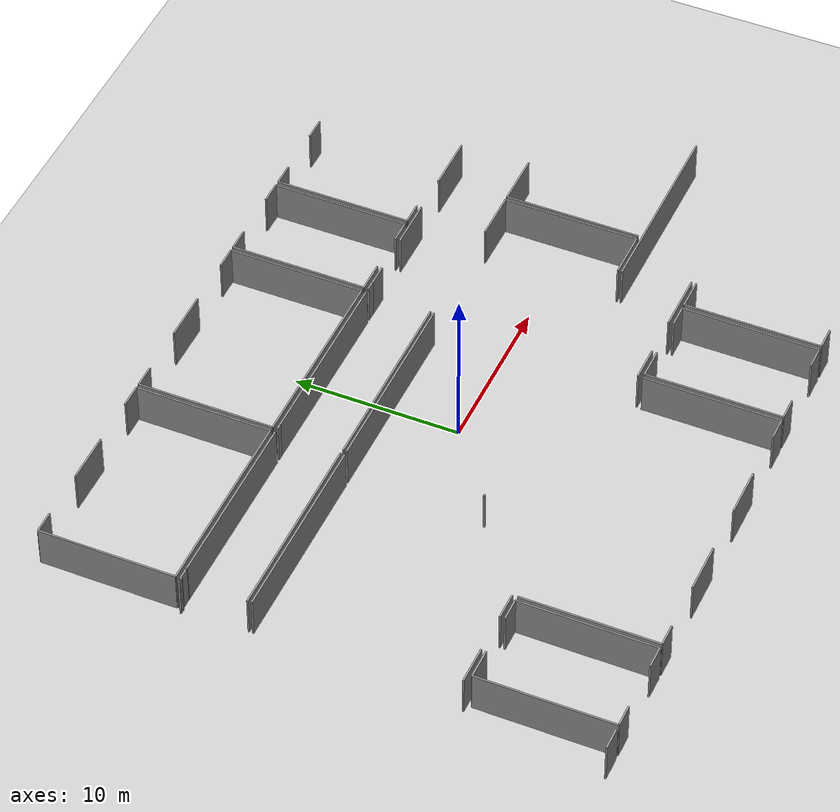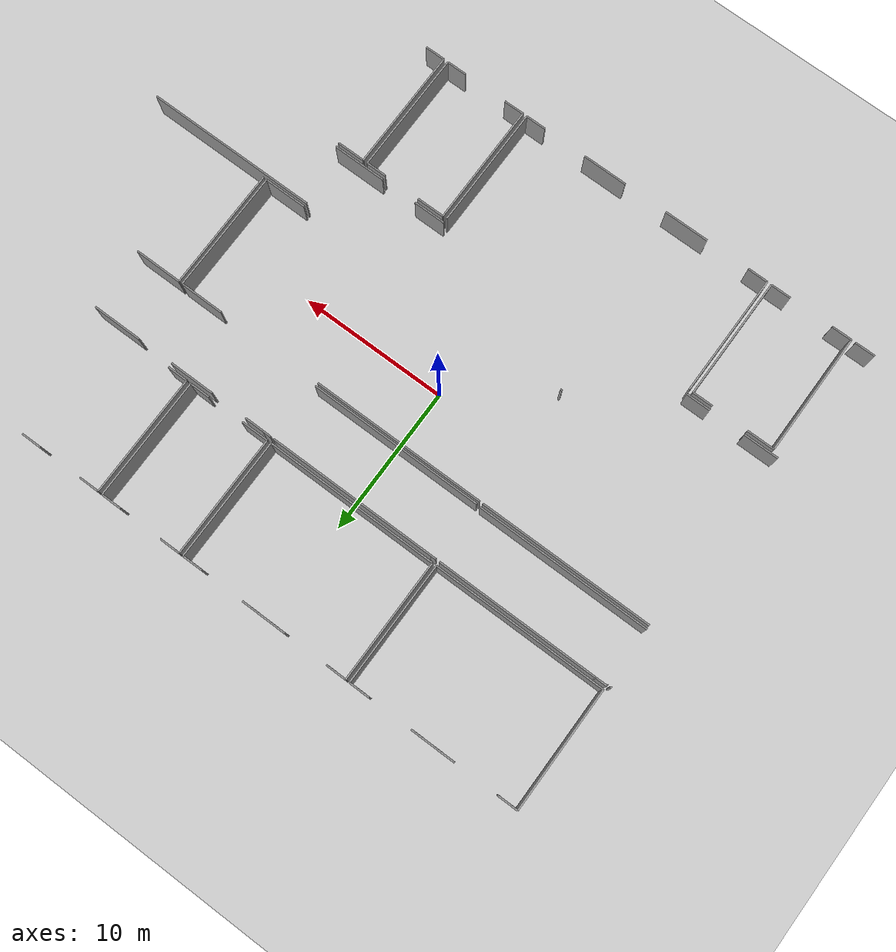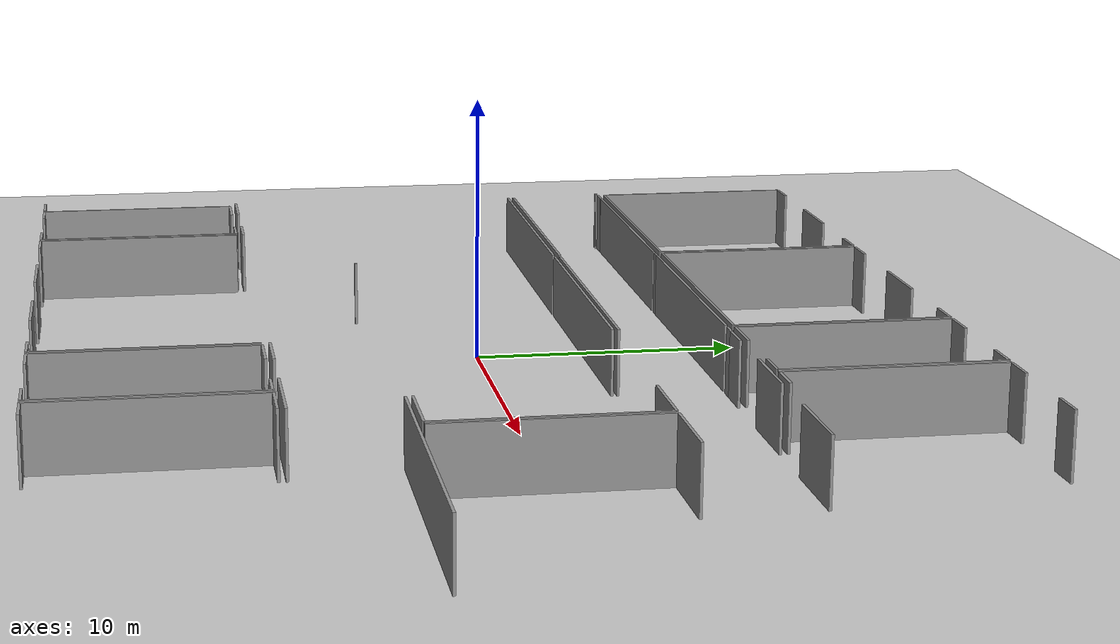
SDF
<sdf version="1.6">
 <world name="default">
  <model name="ground_plane">
   <static>1</static>
   <link name="link">
    <collision name="collision">
     <geometry><plane><normal>0 0 1</normal><size>100 100</size></plane></geometry>
     <surface><friction><ode><mu>100</mu><mu2>50</mu2></ode></friction></surface>
    </collision>
    <visual name="visual">
     <cast_shadows>0</cast_shadows>
     <geometry><plane><normal>0 0 1</normal><size>100 100</size></plane></geometry>
     <material>
      <script><uri>file://media/materials/scripts/gazebo.material</uri><name>Gazebo/Grey</name></script>
     </material>
    </visual>
   </link>
  </model>
  <model name="50041172">
   <static>1</static>
   <link name="Wall_37">
    <collision name="Wall_37_Collision">
     <geometry><box><size>1.36407227462 0.1 2.5</size></box></geometry>
     <pose>0.682036137309 0 1.25 0 0 0</pose>
    </collision>
    <visual name="Wall_37_Visual">
     <pose>0.682036137309 0 1.25 0 0 0</pose>
     <geometry><box><size>1.36407227462 0.1 2.5</size></box></geometry>
     <material>
      <script><uri>file://media/materials/scripts/gazebo.material</uri><name>Gazebo/Grey</name></script>
      <ambient>1 1 1 1</ambient>
     </material>
    </visual>
    <pose>47.5262138389 -33.5373281255 0 0 0 3.14159265359</pose>
   </link>
   <link name="Wall_39">
    <collision name="Wall_39_Collision">
     <geometry><box><size>8.20043822044 0.1 2.5</size></box></geometry>
     <pose>4.10021911022 0 1.25 0 0 0</pose>
    </collision>
    <visual name="Wall_39_Visual">
     <pose>4.10021911022 0 1.25 0 0 0</pose>
     <geometry><box><size>8.20043822044 0.1 2.5</size></box></geometry>
     <material>
      <script><uri>file://media/materials/scripts/gazebo.material</uri><name>Gazebo/Grey</name></script>
      <ambient>1 1 1 1</ambient>
     </material>
    </visual>
    <pose>47.8216633324 -33.542027881 0 0 0 1.57079632679</pose>
   </link>
   <link name="Wall_40">
    <collision name="Wall_40_Collision">
     <geometry><box><size>1.8539900289 0.1 2.5</size></box></geometry>
     <pose>0.926995014449 0 1.25 0 0 0</pose>
    </collision>
    <visual name="Wall_40_Visual">
     <pose>0.926995014449 0 1.25 0 0 0</pose>
     <geometry><box><size>1.8539900289 0.1 2.5</size></box></geometry>
     <material>
      <script><uri>file://media/materials/scripts/gazebo.material</uri><name>Gazebo/Grey</name></script>
      <ambient>1 1 1 1</ambient>
     </material>
    </visual>
    <pose>47.8216633324 -25.3415896605 0 0 0 0.0</pose>
   </link>
   <link name="Wall_41">
    <collision name="Wall_41_Collision">
     <geometry><box><size>1.37512305103 0.1 2.5</size></box></geometry>
     <pose>0.687561525515 0 1.25 0 0 0</pose>
    </collision>
    <visual name="Wall_41_Visual">
     <pose>0.687561525515 0 1.25 0 0 0</pose>
     <geometry><box><size>1.37512305103 0.1 2.5</size></box></geometry>
     <material>
      <script><uri>file://media/materials/scripts/gazebo.material</uri><name>Gazebo/Grey</name></script>
      <ambient>1 1 1 1</ambient>
     </material>
    </visual>
    <pose>52.1506462164 -25.3415896605 0 0 0 0.0</pose>
   </link>
   <link name="Wall_42">
    <collision name="Wall_42_Collision">
     <geometry><box><size>8.19573846496 0.1 2.5</size></box></geometry>
     <pose>4.09786923248 0 1.25 0 0 0</pose>
    </collision>
    <visual name="Wall_42_Visual">
     <pose>4.09786923248 0 1.25 0 0 0</pose>
     <geometry><box><size>8.19573846496 0.1 2.5</size></box></geometry>
     <material>
      <script><uri>file://media/materials/scripts/gazebo.material</uri><name>Gazebo/Grey</name></script>
      <ambient>1 1 1 1</ambient>
     </material>
    </visual>
    <pose>53.5257692674 -25.3415896605 0 0 0 -1.57079632679</pose>
   </link>
   <link name="Wall_43">
    <collision name="Wall_43_Collision">
     <geometry><box><size>1.36292909085 0.1 2.5</size></box></geometry>
     <pose>0.681464545426 0 1.25 0 0 0</pose>
    </collision>
    <visual name="Wall_43_Visual">
     <pose>0.681464545426 0 1.25 0 0 0</pose>
     <geometry><box><size>1.36292909085 0.1 2.5</size></box></geometry>
     <material>
      <script><uri>file://media/materials/scripts/gazebo.material</uri><name>Gazebo/Grey</name></script>
      <ambient>1 1 1 1</ambient>
     </material>
    </visual>
    <pose>53.5257692674 -33.5373281255 0 0 0 3.14159265359</pose>
   </link>
   <link name="Wall_44">
    <collision name="Wall_44_Collision">
     <geometry><box><size>1.3588725647 0.1 2.5</size></box></geometry>
     <pose>0.679436282349 0 1.25 0 0 0</pose>
    </collision>
    <visual name="Wall_44_Visual">
     <pose>0.679436282349 0 1.25 0 0 0</pose>
     <geometry><box><size>1.3588725647 0.1 2.5</size></box></geometry>
     <material>
      <script><uri>file://media/materials/scripts/gazebo.material</uri><name>Gazebo/Grey</name></script>
      <ambient>1 1 1 1</ambient>
     </material>
    </visual>
    <pose>49.1805277698 -33.5373281255 0 0 0 -3.13813407699</pose>
   </link>
   <link name="Wall_45">
    <collision name="Wall_45_Collision">
     <geometry><box><size>8.20551903719 0.1 2.5</size></box></geometry>
     <pose>4.10275951859 0 1.25 0 0 0</pose>
    </collision>
    <visual name="Wall_45_Visual">
     <pose>4.10275951859 0 1.25 0 0 0</pose>
     <geometry><box><size>8.20551903719 0.1 2.5</size></box></geometry>
     <material>
      <script><uri>file://media/materials/scripts/gazebo.material</uri><name>Gazebo/Grey</name></script>
      <ambient>1 1 1 1</ambient>
     </material>
    </visual>
    <pose>53.8153758217 -33.5453304119 0 0 0 1.57079632679</pose>
   </link>
   <link name="Wall_46">
    <collision name="Wall_46_Collision">
     <geometry><box><size>8.21021879267 0.1 2.5</size></box></geometry>
     <pose>4.10510939634 0 1.25 0 0 0</pose>
    </collision>
    <visual name="Wall_46_Visual">
     <pose>4.10510939634 0 1.25 0 0 0</pose>
     <geometry><box><size>8.21021879267 0.1 2.5</size></box></geometry>
     <material>
      <script><uri>file://media/materials/scripts/gazebo.material</uri><name>Gazebo/Grey</name></script>
      <ambient>1 1 1 1</ambient>
     </material>
    </visual>
    <pose>71.5291353085 -25.3398113747 0 0 0 -1.57079632679</pose>
   </link>
   <link name="Wall_47">
    <collision name="Wall_47_Collision">
     <geometry><box><size>1.37093137722 0.1 2.5</size></box></geometry>
     <pose>0.685465688609 0 1.25 0 0 0</pose>
    </collision>
    <visual name="Wall_47_Visual">
     <pose>0.685465688609 0 1.25 0 0 0</pose>
     <geometry><box><size>1.37093137722 0.1 2.5</size></box></geometry>
     <material>
      <script><uri>file://media/materials/scripts/gazebo.material</uri><name>Gazebo/Grey</name></script>
      <ambient>1 1 1 1</ambient>
     </material>
    </visual>
    <pose>71.5291353085 -33.5500301673 0 0 0 3.14159265359</pose>
   </link>
   <link name="Wall_48">
    <collision name="Wall_48_Collision">
     <geometry><box><size>3.02181575688 0.1 2.5</size></box></geometry>
     <pose>1.51090787844 0 1.25 0 0 0</pose>
    </collision>
    <visual name="Wall_48_Visual">
     <pose>1.51090787844 0 1.25 0 0 0</pose>
     <geometry><box><size>3.02181575688 0.1 2.5</size></box></geometry>
     <material>
      <script><uri>file://media/materials/scripts/gazebo.material</uri><name>Gazebo/Grey</name></script>
      <ambient>1 1 1 1</ambient>
     </material>
    </visual>
    <pose>67.186053158 -33.5500301673 0 0 0 3.14159265359</pose>
   </link>
   <link name="Wall_49">
    <collision name="Wall_49_Collision">
     <geometry><box><size>3.02156171605 0.1 2.5</size></box></geometry>
     <pose>1.51078085802 0 1.25 0 0 0</pose>
    </collision>
    <visual name="Wall_49_Visual">
     <pose>1.51078085802 0 1.25 0 0 0</pose>
     <geometry><box><size>3.02156171605 0.1 2.5</size></box></geometry>
     <material>
      <script><uri>file://media/materials/scripts/gazebo.material</uri><name>Gazebo/Grey</name></script>
      <ambient>1 1 1 1</ambient>
     </material>
    </visual>
    <pose>61.1828141374 -33.5500301673 0 0 0 3.14159265359</pose>
   </link>
   <link name="Wall_50">
    <collision name="Wall_50_Collision">
     <geometry><box><size>1.36509652815 0.1 2.5</size></box></geometry>
     <pose>0.682548264076 0 1.25 0 0 0</pose>
    </collision>
    <visual name="Wall_50_Visual">
     <pose>0.682548264076 0 1.25 0 0 0</pose>
     <geometry><box><size>1.36509652815 0.1 2.5</size></box></geometry>
     <material>
      <script><uri>file://media/materials/scripts/gazebo.material</uri><name>Gazebo/Grey</name></script>
      <ambient>1 1 1 1</ambient>
     </material>
    </visual>
    <pose>55.1804642596 -33.5500301673 0 0 0 3.13814984594</pose>
   </link>
   <link name="Wall_51">
    <collision name="Wall_51_Collision">
     <geometry><box><size>8.21034581309 0.1 2.5</size></box></geometry>
     <pose>4.10517290654 0 1.25 0 0 0</pose>
    </collision>
    <visual name="Wall_51_Visual">
     <pose>4.10517290654 0 1.25 0 0 0</pose>
     <geometry><box><size>8.21034581309 0.1 2.5</size></box></geometry>
     <material>
      <script><uri>file://media/materials/scripts/gazebo.material</uri><name>Gazebo/Grey</name></script>
      <ambient>1 1 1 1</ambient>
     </material>
    </visual>
    <pose>71.8113746785 -33.5492680448 0 0 0 1.57079632679</pose>
   </link>
   <link name="Wall_52">
    <collision name="Wall_52_Collision">
     <geometry><box><size>1.86097615192 0.1 2.5</size></box></geometry>
     <pose>0.930488075958 0 1.25 0 0 0</pose>
    </collision>
    <visual name="Wall_52_Visual">
     <pose>0.930488075958 0 1.25 0 0 0</pose>
     <geometry><box><size>1.86097615192 0.1 2.5</size></box></geometry>
     <material>
      <script><uri>file://media/materials/scripts/gazebo.material</uri><name>Gazebo/Grey</name></script>
      <ambient>1 1 1 1</ambient>
     </material>
    </visual>
    <pose>71.8113746785 -25.3389222317 0 0 0 0.0</pose>
   </link>
   <link name="Wall_53">
    <collision name="Wall_53_Collision">
     <geometry><box><size>1.36483439713 0.1 2.5</size></box></geometry>
     <pose>0.682417198565 0 1.25 0 0 0</pose>
    </collision>
    <visual name="Wall_53_Visual">
     <pose>0.682417198565 0 1.25 0 0 0</pose>
     <geometry><box><size>1.36483439713 0.1 2.5</size></box></geometry>
     <material>
      <script><uri>file://media/materials/scripts/gazebo.material</uri><name>Gazebo/Grey</name></script>
      <ambient>1 1 1 1</ambient>
     </material>
    </visual>
    <pose>76.1556000127 -25.3389222317 0 0 0 0.0</pose>
   </link>
   <link name="Wall_54">
    <collision name="Wall_54_Collision">
     <geometry><box><size>8.204248833 0.1 2.5</size></box></geometry>
     <pose>4.1021244165 0 1.25 0 0 0</pose>
    </collision>
    <visual name="Wall_54_Visual">
     <pose>4.1021244165 0 1.25 0 0 0</pose>
     <geometry><box><size>8.204248833 0.1 2.5</size></box></geometry>
     <material>
      <script><uri>file://media/materials/scripts/gazebo.material</uri><name>Gazebo/Grey</name></script>
      <ambient>1 1 1 1</ambient>
     </material>
    </visual>
    <pose>77.5204344098 -25.3389222317 0 0 0 -1.57079632679</pose>
   </link>
   <link name="Wall_55">
    <collision name="Wall_55_Collision">
     <geometry><box><size>1.35899145788 0.1 2.5</size></box></geometry>
     <pose>0.679495728938 0 1.25 0 0 0</pose>
    </collision>
    <visual name="Wall_55_Visual">
     <pose>0.679495728938 0 1.25 0 0 0</pose>
     <geometry><box><size>1.35899145788 0.1 2.5</size></box></geometry>
     <material>
      <script><uri>file://media/materials/scripts/gazebo.material</uri><name>Gazebo/Grey</name></script>
      <ambient>1 1 1 1</ambient>
     </material>
    </visual>
    <pose>77.5204344098 -33.5431710647 0 0 0 3.14159265359</pose>
   </link>
   <link name="Wall_56">
    <collision name="Wall_56_Collision">
     <geometry><box><size>1.35798898144 0.1 2.5</size></box></geometry>
     <pose>0.678994490721 0 1.25 0 0 0</pose>
    </collision>
    <visual name="Wall_56_Visual">
     <pose>0.678994490721 0 1.25 0 0 0</pose>
     <geometry><box><size>1.35798898144 0.1 2.5</size></box></geometry>
     <material>
      <script><uri>file://media/materials/scripts/gazebo.material</uri><name>Gazebo/Grey</name></script>
      <ambient>1 1 1 1</ambient>
     </material>
    </visual>
    <pose>73.169349973 -33.5431710647 0 0 0 -3.13710292602</pose>
   </link>
   <link name="Wall_57">
    <collision name="Wall_57_Collision">
     <geometry><box><size>8.22177765076 0.1 2.5</size></box></geometry>
     <pose>4.11088882538 0 1.25 0 0 0</pose>
    </collision>
    <visual name="Wall_57_Visual">
     <pose>4.11088882538 0 1.25 0 0 0</pose>
     <geometry><box><size>8.22177765076 0.1 2.5</size></box></geometry>
     <material>
      <script><uri>file://media/materials/scripts/gazebo.material</uri><name>Gazebo/Grey</name></script>
      <ambient>1 1 1 1</ambient>
     </material>
    </visual>
    <pose>77.8243942714 -33.5502842082 0 0 0 1.57079632679</pose>
   </link>
   <link name="Wall_58">
    <collision name="Wall_58_Collision">
     <geometry><box><size>1.87329713251 0.1 2.5</size></box></geometry>
     <pose>0.936648566257 0 1.25 0 0 0</pose>
    </collision>
    <visual name="Wall_58_Visual">
     <pose>0.936648566257 0 1.25 0 0 0</pose>
     <geometry><box><size>1.87329713251 0.1 2.5</size></box></geometry>
     <material>
      <script><uri>file://media/materials/scripts/gazebo.material</uri><name>Gazebo/Grey</name></script>
      <ambient>1 1 1 1</ambient>
     </material>
    </visual>
    <pose>77.8243942714 -25.3285065574 0 0 0 0.0</pose>
   </link>
   <link name="Wall_62">
    <collision name="Wall_62_Collision">
     <geometry><box><size>1.36140584725 0.1 2.5</size></box></geometry>
     <pose>0.680702923625 0 1.25 0 0 0</pose>
    </collision>
    <visual name="Wall_62_Visual">
     <pose>0.680702923625 0 1.25 0 0 0</pose>
     <geometry><box><size>1.36140584725 0.1 2.5</size></box></geometry>
     <material>
      <script><uri>file://media/materials/scripts/gazebo.material</uri><name>Gazebo/Grey</name></script>
      <ambient>1 1 1 1</ambient>
     </material>
    </visual>
    <pose>79.1857991172 -33.5486329427 0 0 0 -3.14037974133</pose>
   </link>
   <link name="Wall_133">
    <collision name="Wall_133_Collision">
     <geometry><box><size>11.7321139373 0.1 2.5</size></box></geometry>
     <pose>5.86605696866 0 1.25 0 0 0</pose>
    </collision>
    <visual name="Wall_133_Visual">
     <pose>5.86605696866 0 1.25 0 0 0</pose>
     <geometry><box><size>11.7321139373 0.1 2.5</size></box></geometry>
     <material>
      <script><uri>file://media/materials/scripts/gazebo.material</uri><name>Gazebo/Grey</name></script>
      <ambient>1 1 1 1</ambient>
     </material>
    </visual>
    <pose>47.7970213712 -12.6970880569 0 0 0 0.0</pose>
   </link>
   <link name="Wall_134">
    <collision name="Wall_134_Collision">
     <geometry><box><size>11.7899082277 0.1 2.5</size></box></geometry>
     <pose>5.89495411387 0 1.25 0 0 0</pose>
    </collision>
    <visual name="Wall_134_Visual">
     <pose>5.89495411387 0 1.25 0 0 0</pose>
     <geometry><box><size>11.7899082277 0.1 2.5</size></box></geometry>
     <material>
      <script><uri>file://media/materials/scripts/gazebo.material</uri><name>Gazebo/Grey</name></script>
      <ambient>1 1 1 1</ambient>
     </material>
    </visual>
    <pose>59.7511670001 -12.6874345051 0 0 0 0.0</pose>
   </link>
   <link name="Wall_135">
    <collision name="Wall_135_Collision">
     <geometry><box><size>0.13018353617 0.1 2.5</size></box></geometry>
     <pose>0.0650917680849 0 1.25 0 0 0</pose>
    </collision>
    <visual name="Wall_135_Visual">
     <pose>0.0650917680849 0 1.25 0 0 0</pose>
     <geometry><box><size>0.13018353617 0.1 2.5</size></box></geometry>
     <material>
      <script><uri>file://media/materials/scripts/gazebo.material</uri><name>Gazebo/Grey</name></script>
      <ambient>1 1 1 1</ambient>
     </material>
    </visual>
    <pose>59.8812359087 -20.8524340288 0 0 0 -3.09962512223</pose>
   </link>
   <link name="Wall_136">
    <collision name="Wall_136_Collision">
     <geometry><box><size>8.16271315614 0.1 2.5</size></box></geometry>
     <pose>4.08135657807 0 1.25 0 0 0</pose>
    </collision>
    <visual name="Wall_136_Visual">
     <pose>4.08135657807 0 1.25 0 0 0</pose>
     <geometry><box><size>8.16271315614 0.1 2.5</size></box></geometry>
     <material>
      <script><uri>file://media/materials/scripts/gazebo.material</uri><name>Gazebo/Grey</name></script>
      <ambient>1 1 1 1</ambient>
     </material>
    </visual>
    <pose>81.7533898574 -12.6956908323 0 0 0 -1.57079632679</pose>
   </link>
   <link name="Wall_137">
    <collision name="Wall_137_Collision">
     <geometry><box><size>2.8608808866 0.1 2.5</size></box></geometry>
     <pose>1.4304404433 0 1.25 0 0 0</pose>
    </collision>
    <visual name="Wall_137_Visual">
     <pose>1.4304404433 0 1.25 0 0 0</pose>
     <geometry><box><size>2.8608808866 0.1 2.5</size></box></geometry>
     <material>
      <script><uri>file://media/materials/scripts/gazebo.material</uri><name>Gazebo/Grey</name></script>
      <ambient>1 1 1 1</ambient>
     </material>
    </visual>
    <pose>81.7533898574 -20.8584039884 0 0 0 3.14159265359</pose>
   </link>
   <link name="Wall_138">
    <collision name="Wall_138_Collision">
     <geometry><box><size>2.9589518168 0.1 2.5</size></box></geometry>
     <pose>1.4794759084 0 1.25 0 0 0</pose>
    </collision>
    <visual name="Wall_138_Visual">
     <pose>1.4794759084 0 1.25 0 0 0</pose>
     <geometry><box><size>2.9589518168 0.1 2.5</size></box></geometry>
     <material>
      <script><uri>file://media/materials/scripts/gazebo.material</uri><name>Gazebo/Grey</name></script>
      <ambient>1 1 1 1</ambient>
     </material>
    </visual>
    <pose>78.7944492077 -12.6875615255 0 0 0 -0.00274736376801</pose>
   </link>
   <link name="Wall_183">
    <collision name="Wall_183_Collision">
     <geometry><box><size>11.6014099266 0.1 2.5</size></box></geometry>
     <pose>5.80070496332 0 1.25 0 0 0</pose>
    </collision>
    <visual name="Wall_183_Visual">
     <pose>5.80070496332 0 1.25 0 0 0</pose>
     <geometry><box><size>11.6014099266 0.1 2.5</size></box></geometry>
     <material>
      <script><uri>file://media/materials/scripts/gazebo.material</uri><name>Gazebo/Grey</name></script>
      <ambient>1 1 1 1</ambient>
     </material>
    </visual>
    <pose>78.8947953384 -21.1076180496 0 0 0 0.0</pose>
   </link>
   <link name="Wall_197">
    <collision name="Wall_197_Collision">
     <geometry><box><size>3.5654631482 0.1 2.5</size></box></geometry>
     <pose>1.7827315741 0 1.25 0 0 0</pose>
    </collision>
    <visual name="Wall_197_Visual">
     <pose>1.7827315741 0 1.25 0 0 0</pose>
     <geometry><box><size>3.5654631482 0.1 2.5</size></box></geometry>
     <material>
      <script><uri>file://media/materials/scripts/gazebo.material</uri><name>Gazebo/Grey</name></script>
      <ambient>1 1 1 1</ambient>
     </material>
    </visual>
    <pose>79.6893080563 -25.0504588613 0 0 0 3.14159265359</pose>
   </link>
   <link name="Wall_198">
    <collision name="Wall_198_Collision">
     <geometry><box><size>2.14562890985 0.1 2.5</size></box></geometry>
     <pose>1.07281445492 0 1.25 0 0 0</pose>
    </collision>
    <visual name="Wall_198_Visual">
     <pose>1.07281445492 0 1.25 0 0 0</pose>
     <geometry><box><size>2.14562890985 0.1 2.5</size></box></geometry>
     <material>
      <script><uri>file://media/materials/scripts/gazebo.material</uri><name>Gazebo/Grey</name></script>
      <ambient>1 1 1 1</ambient>
     </material>
    </visual>
    <pose>73.6770505859 -25.0504588613 0 0 0 3.14159265359</pose>
   </link>
   <link name="Wall_199">
    <collision name="Wall_199_Collision">
     <geometry><box><size>1.64618462418 0.1 2.5</size></box></geometry>
     <pose>0.823092312089 0 1.25 0 0 0</pose>
    </collision>
    <visual name="Wall_199_Visual">
     <pose>0.823092312089 0 1.25 0 0 0</pose>
     <geometry><box><size>1.64618462418 0.1 2.5</size></box></geometry>
     <material>
      <script><uri>file://media/materials/scripts/gazebo.material</uri><name>Gazebo/Grey</name></script>
      <ambient>1 1 1 1</ambient>
     </material>
    </visual>
    <pose>53.7770156553 -25.0504588613 0 0 0 3.14159265359</pose>
   </link>
   <link name="Wall_200">
    <collision name="Wall_200_Collision">
     <geometry><box><size>2.34225651774 0.1 2.5</size></box></geometry>
     <pose>1.17112825887 0 1.25 0 0 0</pose>
    </collision>
    <visual name="Wall_200_Visual">
     <pose>1.17112825887 0 1.25 0 0 0</pose>
     <geometry><box><size>2.34225651774 0.1 2.5</size></box></geometry>
     <material>
      <script><uri>file://media/materials/scripts/gazebo.material</uri><name>Gazebo/Grey</name></script>
      <ambient>1 1 1 1</ambient>
     </material>
    </visual>
    <pose>49.6684131974 -25.0504588613 0 0 0 3.14159265359</pose>
   </link>
   <link name="Wall_231">
    <collision name="Wall_231_Collision">
     <geometry><box><size>8.20501095551 0.1 2.5</size></box></geometry>
     <pose>4.10250547776 0 1.25 0 0 0</pose>
    </collision>
    <visual name="Wall_231_Visual">
     <pose>4.10250547776 0 1.25 0 0 0</pose>
     <geometry><box><size>8.20501095551 0.1 2.5</size></box></geometry>
     <material>
      <script><uri>file://media/materials/scripts/gazebo.material</uri><name>Gazebo/Grey</name></script>
      <ambient>1 1 1 1</ambient>
     </material>
    </visual>
    <pose>47.8226794957 -8.21949128322 0 0 0 1.57079632679</pose>
   </link>
   <link name="Wall_232">
    <collision name="Wall_232_Collision">
     <geometry><box><size>1.34755962021 0.1 2.5</size></box></geometry>
     <pose>0.673779810104 0 1.25 0 0 0</pose>
    </collision>
    <visual name="Wall_232_Visual">
     <pose>0.673779810104 0 1.25 0 0 0</pose>
     <geometry><box><size>1.34755962021 0.1 2.5</size></box></geometry>
     <material>
      <script><uri>file://media/materials/scripts/gazebo.material</uri><name>Gazebo/Grey</name></script>
      <ambient>1 1 1 1</ambient>
     </material>
    </visual>
    <pose>47.8226794957 -0.0144803277127 0 0 0 0.0</pose>
   </link>
   <link name="Wall_233">
    <collision name="Wall_233_Collision">
     <geometry><box><size>3.05014131022 0.1 2.5</size></box></geometry>
     <pose>1.52507065511 0 1.25 0 0 0</pose>
    </collision>
    <visual name="Wall_233_Visual">
     <pose>1.52507065511 0 1.25 0 0 0</pose>
     <geometry><box><size>3.05014131022 0.1 2.5</size></box></geometry>
     <material>
      <script><uri>file://media/materials/scripts/gazebo.material</uri><name>Gazebo/Grey</name></script>
      <ambient>1 1 1 1</ambient>
     </material>
    </visual>
    <pose>52.1515353593 -0.0144803277127 0 0 0 0.0</pose>
   </link>
   <link name="Wall_234">
    <collision name="Wall_234_Collision">
     <geometry><box><size>1.38579276619 0.1 2.5</size></box></geometry>
     <pose>0.692896383094 0 1.25 0 0 0</pose>
    </collision>
    <visual name="Wall_234_Visual">
     <pose>0.692896383094 0 1.25 0 0 0</pose>
     <geometry><box><size>1.38579276619 0.1 2.5</size></box></geometry>
     <material>
      <script><uri>file://media/materials/scripts/gazebo.material</uri><name>Gazebo/Grey</name></script>
      <ambient>1 1 1 1</ambient>
     </material>
    </visual>
    <pose>58.1526150329 -0.0144803277127 0 0 0 0.0</pose>
   </link>
   <link name="Wall_235">
    <collision name="Wall_235_Collision">
     <geometry><box><size>8.19802483249 0.1 2.5</size></box></geometry>
     <pose>4.09901241625 0 1.25 0 0 0</pose>
    </collision>
    <visual name="Wall_235_Visual">
     <pose>4.09901241625 0 1.25 0 0 0</pose>
     <geometry><box><size>8.19802483249 0.1 2.5</size></box></geometry>
     <material>
      <script><uri>file://media/materials/scripts/gazebo.material</uri><name>Gazebo/Grey</name></script>
      <ambient>1 1 1 1</ambient>
     </material>
    </visual>
    <pose>59.5384077991 -0.0144803277127 0 0 0 -1.57079632679</pose>
   </link>
   <link name="Wall_236">
    <collision name="Wall_236_Collision">
     <geometry><box><size>11.7157303862 0.1 2.5</size></box></geometry>
     <pose>5.85786519312 0 1.25 0 0 0</pose>
    </collision>
    <visual name="Wall_236_Visual">
     <pose>5.85786519312 0 1.25 0 0 0</pose>
     <geometry><box><size>11.7157303862 0.1 2.5</size></box></geometry>
     <material>
      <script><uri>file://media/materials/scripts/gazebo.material</uri><name>Gazebo/Grey</name></script>
      <ambient>1 1 1 1</ambient>
     </material>
    </visual>
    <pose>59.5384077991 -8.2125051602 0 0 0 -3.14099635074</pose>
   </link>
   <link name="Wall_237">
    <collision name="Wall_237_Collision">
     <geometry><box><size>8.18938744403 0.1 2.5</size></box></geometry>
     <pose>4.09469372202 0 1.25 0 0 0</pose>
    </collision>
    <visual name="Wall_237_Visual">
     <pose>4.09469372202 0 1.25 0 0 0</pose>
     <geometry><box><size>8.18938744403 0.1 2.5</size></box></geometry>
     <material>
      <script><uri>file://media/materials/scripts/gazebo.material</uri><name>Gazebo/Grey</name></script>
      <ambient>1 1 1 1</ambient>
     </material>
    </visual>
    <pose>59.8084532089 -8.20805944556 0 0 0 1.57079632679</pose>
   </link>
   <link name="Wall_238">
    <collision name="Wall_238_Collision">
     <geometry><box><size>1.37525007145 0.1 2.5</size></box></geometry>
     <pose>0.687625035724 0 1.25 0 0 0</pose>
    </collision>
    <visual name="Wall_238_Visual">
     <pose>0.687625035724 0 1.25 0 0 0</pose>
     <geometry><box><size>1.37525007145 0.1 2.5</size></box></geometry>
     <material>
      <script><uri>file://media/materials/scripts/gazebo.material</uri><name>Gazebo/Grey</name></script>
      <ambient>1 1 1 1</ambient>
     </material>
    </visual>
    <pose>59.8084532089 -0.0186720015242 0 0 0 0.0</pose>
   </link>
   <link name="Wall_239">
    <collision name="Wall_239_Collision">
     <geometry><box><size>3.04493347306 0.1 2.5</size></box></geometry>
     <pose>1.52246673653 0 1.25 0 0 0</pose>
    </collision>
    <visual name="Wall_239_Visual">
     <pose>1.52246673653 0 1.25 0 0 0</pose>
     <geometry><box><size>3.04493347306 0.1 2.5</size></box></geometry>
     <material>
      <script><uri>file://media/materials/scripts/gazebo.material</uri><name>Gazebo/Grey</name></script>
      <ambient>1 1 1 1</ambient>
     </material>
    </visual>
    <pose>64.1554729923 -0.0186720015242 0 0 0 0.0</pose>
   </link>
   <link name="Wall_240">
    <collision name="Wall_240_Collision">
     <geometry><box><size>1.35619700867 0.1 2.5</size></box></geometry>
     <pose>0.678098504335 0 1.25 0 0 0</pose>
    </collision>
    <visual name="Wall_240_Visual">
     <pose>0.678098504335 0 1.25 0 0 0</pose>
     <geometry><box><size>1.35619700867 0.1 2.5</size></box></geometry>
     <material>
      <script><uri>file://media/materials/scripts/gazebo.material</uri><name>Gazebo/Grey</name></script>
      <ambient>1 1 1 1</ambient>
     </material>
    </visual>
    <pose>70.1800514433 -0.0186720015242 0 0 0 0.0</pose>
   </link>
   <link name="Wall_241">
    <collision name="Wall_241_Collision">
     <geometry><box><size>8.1994220571 0.1 2.5</size></box></geometry>
     <pose>4.09971102855 0 1.25 0 0 0</pose>
    </collision>
    <visual name="Wall_241_Visual">
     <pose>4.09971102855 0 1.25 0 0 0</pose>
     <geometry><box><size>8.1994220571 0.1 2.5</size></box></geometry>
     <material>
      <script><uri>file://media/materials/scripts/gazebo.material</uri><name>Gazebo/Grey</name></script>
      <ambient>1 1 1 1</ambient>
     </material>
    </visual>
    <pose>71.5362484519 -0.0186720015242 0 0 0 -1.57079632679</pose>
   </link>
   <link name="Wall_242">
    <collision name="Wall_242_Collision">
     <geometry><box><size>11.727799536 0.1 2.5</size></box></geometry>
     <pose>5.86389976801 0 1.25 0 0 0</pose>
    </collision>
    <visual name="Wall_242_Visual">
     <pose>5.86389976801 0 1.25 0 0 0</pose>
     <geometry><box><size>11.727799536 0.1 2.5</size></box></geometry>
     <material>
      <script><uri>file://media/materials/scripts/gazebo.material</uri><name>Gazebo/Grey</name></script>
      <ambient>1 1 1 1</ambient>
     </material>
    </visual>
    <pose>71.5362484519 -8.21809405862 0 0 0 3.14073702724</pose>
   </link>
   <link name="Wall_243">
    <collision name="Wall_243_Collision">
     <geometry><box><size>8.20818646597 0.1 2.5</size></box></geometry>
     <pose>4.10409323299 0 1.25 0 0 0</pose>
    </collision>
    <visual name="Wall_243_Visual">
     <pose>4.10409323299 0 1.25 0 0 0</pose>
     <geometry><box><size>8.20818646597 0.1 2.5</size></box></geometry>
     <material>
      <script><uri>file://media/materials/scripts/gazebo.material</uri><name>Gazebo/Grey</name></script>
      <ambient>1 1 1 1</ambient>
     </material>
    </visual>
    <pose>71.8134070052 -8.21860214029 0 0 0 1.57079632679</pose>
   </link>
   <link name="Wall_244">
    <collision name="Wall_244_Collision">
     <geometry><box><size>1.38922231749 0.1 2.5</size></box></geometry>
     <pose>0.694611158744 0 1.25 0 0 0</pose>
    </collision>
    <visual name="Wall_244_Visual">
     <pose>0.694611158744 0 1.25 0 0 0</pose>
     <geometry><box><size>1.38922231749 0.1 2.5</size></box></geometry>
     <material>
      <script><uri>file://media/materials/scripts/gazebo.material</uri><name>Gazebo/Grey</name></script>
      <ambient>1 1 1 1</ambient>
     </material>
    </visual>
    <pose>71.8134070052 -0.0104156743196 0 0 0 0.0</pose>
   </link>
   <link name="Wall_245">
    <collision name="Wall_245_Collision">
     <geometry><box><size>1.36889905052 0.1 2.5</size></box></geometry>
     <pose>0.684449525261 0 1.25 0 0 0</pose>
    </collision>
    <visual name="Wall_245_Visual">
     <pose>0.684449525261 0 1.25 0 0 0</pose>
     <geometry><box><size>1.36889905052 0.1 2.5</size></box></geometry>
     <material>
      <script><uri>file://media/materials/scripts/gazebo.material</uri><name>Gazebo/Grey</name></script>
      <ambient>1 1 1 1</ambient>
     </material>
    </visual>
    <pose>76.1506462164 -0.0104156743196 0 0 0 0.0</pose>
   </link>
   <link name="Wall_246">
    <collision name="Wall_246_Collision">
     <geometry><box><size>8.20437585342 0.1 2.5</size></box></geometry>
     <pose>4.10218792671 0 1.25 0 0 0</pose>
    </collision>
    <visual name="Wall_246_Visual">
     <pose>4.10218792671 0 1.25 0 0 0</pose>
     <geometry><box><size>8.20437585342 0.1 2.5</size></box></geometry>
     <material>
      <script><uri>file://media/materials/scripts/gazebo.material</uri><name>Gazebo/Grey</name></script>
      <ambient>1 1 1 1</ambient>
     </material>
    </visual>
    <pose>77.5195452669 -0.0104156743196 0 0 0 -1.57079632679</pose>
   </link>
   <link name="Wall_247">
    <collision name="Wall_247_Collision">
     <geometry><box><size>1.37258264266 0.1 2.5</size></box></geometry>
     <pose>0.68629132133 0 1.25 0 0 0</pose>
    </collision>
    <visual name="Wall_247_Visual">
     <pose>0.68629132133 0 1.25 0 0 0</pose>
     <geometry><box><size>1.37258264266 0.1 2.5</size></box></geometry>
     <material>
      <script><uri>file://media/materials/scripts/gazebo.material</uri><name>Gazebo/Grey</name></script>
      <ambient>1 1 1 1</ambient>
     </material>
    </visual>
    <pose>77.5195452669 -8.21479152774 0 0 0 3.14159265359</pose>
   </link>
   <link name="Wall_248">
    <collision name="Wall_248_Collision">
     <geometry><box><size>1.86834722219 0.1 2.5</size></box></geometry>
     <pose>0.934173611094 0 1.25 0 0 0</pose>
    </collision>
    <visual name="Wall_248_Visual">
     <pose>0.934173611094 0 1.25 0 0 0</pose>
     <geometry><box><size>1.86834722219 0.1 2.5</size></box></geometry>
     <material>
      <script><uri>file://media/materials/scripts/gazebo.material</uri><name>Gazebo/Grey</name></script>
      <ambient>1 1 1 1</ambient>
     </material>
    </visual>
    <pose>73.6817503414 -8.21479152774 0 0 0 -3.13955308881</pose>
   </link>
   <link name="Wall_249">
    <collision name="Wall_249_Collision">
     <geometry><box><size>8.19929503668 0.1 2.5</size></box></geometry>
     <pose>4.09964751834 0 1.25 0 0 0</pose>
    </collision>
    <visual name="Wall_249_Visual">
     <pose>4.09964751834 0 1.25 0 0 0</pose>
     <geometry><box><size>8.19929503668 0.1 2.5</size></box></geometry>
     <material>
      <script><uri>file://media/materials/scripts/gazebo.material</uri><name>Gazebo/Grey</name></script>
      <ambient>1 1 1 1</ambient>
     </material>
    </visual>
    <pose>77.8205836588 -8.2179670382 0 0 0 1.57079632679</pose>
   </link>
   <link name="Wall_250">
    <collision name="Wall_250_Collision">
     <geometry><box><size>1.37093137722 0.1 2.5</size></box></geometry>
     <pose>0.685465688609 0 1.25 0 0 0</pose>
    </collision>
    <visual name="Wall_250_Visual">
     <pose>0.685465688609 0 1.25 0 0 0</pose>
     <geometry><box><size>1.37093137722 0.1 2.5</size></box></geometry>
     <material>
      <script><uri>file://media/materials/scripts/gazebo.material</uri><name>Gazebo/Grey</name></script>
      <ambient>1 1 1 1</ambient>
     </material>
    </visual>
    <pose>77.8205836588 -0.0186720015242 0 0 0 0.0</pose>
   </link>
   <link name="Wall_251">
    <collision name="Wall_251_Collision">
     <geometry><box><size>1.37029627513 0.1 2.5</size></box></geometry>
     <pose>0.685148137563 0 1.25 0 0 0</pose>
    </collision>
    <visual name="Wall_251_Visual">
     <pose>0.685148137563 0 1.25 0 0 0</pose>
     <geometry><box><size>1.37029627513 0.1 2.5</size></box></geometry>
     <material>
      <script><uri>file://media/materials/scripts/gazebo.material</uri><name>Gazebo/Grey</name></script>
      <ambient>1 1 1 1</ambient>
     </material>
    </visual>
    <pose>82.1479152774 -0.0186720015242 0 0 0 0.0</pose>
   </link>
   <link name="Wall_254">
    <collision name="Wall_254_Collision">
     <geometry><box><size>1.37969583872 0.1 2.5</size></box></geometry>
     <pose>0.68984791936 0 1.25 0 0 0</pose>
    </collision>
    <visual name="Wall_254_Visual">
     <pose>0.68984791936 0 1.25 0 0 0</pose>
     <geometry><box><size>1.37969583872 0.1 2.5</size></box></geometry>
     <material>
      <script><uri>file://media/materials/scripts/gazebo.material</uri><name>Gazebo/Grey</name></script>
      <ambient>1 1 1 1</ambient>
     </material>
    </visual>
    <pose>79.2002794449 -8.21758597695 0 0 0 -3.14131646137</pose>
   </link>
   <link name="Wall_299">
    <collision name="Wall_299_Collision">
     <geometry><box><size>0.114445397098 0.1 2.5</size></box></geometry>
     <pose>0.0572226985488 0 1.25 0 0 0</pose>
    </collision>
    <visual name="Wall_299_Visual">
     <pose>0.0572226985488 0 1.25 0 0 0</pose>
     <geometry><box><size>0.114445397098 0.1 2.5</size></box></geometry>
     <material>
      <script><uri>file://media/materials/scripts/gazebo.material</uri><name>Gazebo/Grey</name></script>
      <ambient>1 1 1 1</ambient>
     </material>
    </visual>
    <pose>47.5446317996 -8.50935187831 0 0 0 -1.57079632679</pose>
   </link>
   <link name="Wall_307">
    <collision name="Wall_307_Collision">
     <geometry><box><size>0.0603346988028 0.1 2.5</size></box></geometry>
     <pose>0.0301673494014 0 1.25 0 0 0</pose>
    </collision>
    <visual name="Wall_307_Visual">
     <pose>0.0301673494014 0 1.25 0 0 0</pose>
     <geometry><box><size>0.0603346988028 0.1 2.5</size></box></geometry>
     <material>
      <script><uri>file://media/materials/scripts/gazebo.material</uri><name>Gazebo/Grey</name></script>
      <ambient>1 1 1 1</ambient>
     </material>
    </visual>
    <pose>48.5243402877 -8.50109555111 0 0 0 0.0</pose>
   </link>
   <link name="Wall_308">
    <collision name="Wall_308_Collision">
     <geometry><box><size>10.9610999968 0.1 2.5</size></box></geometry>
     <pose>5.48054999841 0 1.25 0 0 0</pose>
    </collision>
    <visual name="Wall_308_Visual">
     <pose>5.48054999841 0 1.25 0 0 0</pose>
     <geometry><box><size>10.9610999968 0.1 2.5</size></box></geometry>
     <material>
      <script><uri>file://media/materials/scripts/gazebo.material</uri><name>Gazebo/Grey</name></script>
      <ambient>1 1 1 1</ambient>
     </material>
    </visual>
    <pose>48.5846749865 -8.50109555111 0 0 0 0.0</pose>
   </link>
   <link name="Wall_309">
    <collision name="Wall_309_Collision">
     <geometry><box><size>11.7565018577 0.1 2.5</size></box></geometry>
     <pose>5.87825092884 0 1.25 0 0 0</pose>
    </collision>
    <visual name="Wall_309_Visual">
     <pose>5.87825092884 0 1.25 0 0 0</pose>
     <geometry><box><size>11.7565018577 0.1 2.5</size></box></geometry>
     <material>
      <script><uri>file://media/materials/scripts/gazebo.material</uri><name>Gazebo/Grey</name></script>
      <ambient>1 1 1 1</ambient>
     </material>
    </visual>
    <pose>59.5457749833 -12.4394906481 0 0 0 3.14159265359</pose>
   </link>
   <link name="Wall_310">
    <collision name="Wall_310_Collision">
     <geometry><box><size>0.112159029564 0.1 2.5</size></box></geometry>
     <pose>0.056079514782 0 1.25 0 0 0</pose>
    </collision>
    <visual name="Wall_310_Visual">
     <pose>0.056079514782 0 1.25 0 0 0</pose>
     <geometry><box><size>0.112159029564 0.1 2.5</size></box></geometry>
     <material>
      <script><uri>file://media/materials/scripts/gazebo.material</uri><name>Gazebo/Grey</name></script>
      <ambient>1 1 1 1</ambient>
     </material>
    </visual>
    <pose>47.7892731257 -8.61401670319 0 0 0 1.57079632679</pose>
   </link>
   <link name="Wall_311">
    <collision name="Wall_311_Collision">
     <geometry><box><size>0.735067557133 0.1 2.5</size></box></geometry>
     <pose>0.367533778567 0 1.25 0 0 0</pose>
    </collision>
    <visual name="Wall_311_Visual">
     <pose>0.367533778567 0 1.25 0 0 0</pose>
     <geometry><box><size>0.735067557133 0.1 2.5</size></box></geometry>
     <material>
      <script><uri>file://media/materials/scripts/gazebo.material</uri><name>Gazebo/Grey</name></script>
      <ambient>1 1 1 1</ambient>
     </material>
    </visual>
    <pose>47.7892731257 -8.50185767362 0 0 0 0.00103680626406</pose>
   </link>
   <link name="Wall_312">
    <collision name="Wall_312_Collision">
     <geometry><box><size>11.4186275444 0.1 2.5</size></box></geometry>
     <pose>5.70931377219 0 1.25 0 0 0</pose>
    </collision>
    <visual name="Wall_312_Visual">
     <pose>5.70931377219 0 1.25 0 0 0</pose>
     <geometry><box><size>11.4186275444 0.1 2.5</size></box></geometry>
     <material>
      <script><uri>file://media/materials/scripts/gazebo.material</uri><name>Gazebo/Grey</name></script>
      <ambient>1 1 1 1</ambient>
     </material>
    </visual>
    <pose>60.1415007462 -8.50211171446 0 0 0 0.0</pose>
   </link>
   <link name="Wall_313">
    <collision name="Wall_313_Collision">
     <geometry><box><size>11.7659013686 0.1 2.5</size></box></geometry>
     <pose>5.88295068432 0 1.25 0 0 0</pose>
    </collision>
    <visual name="Wall_313_Visual">
     <pose>5.88295068432 0 1.25 0 0 0</pose>
     <geometry><box><size>11.7659013686 0.1 2.5</size></box></geometry>
     <material>
      <script><uri>file://media/materials/scripts/gazebo.material</uri><name>Gazebo/Grey</name></script>
      <ambient>1 1 1 1</ambient>
     </material>
    </visual>
    <pose>71.5601282906 -12.4723889365 0 0 0 3.14159265359</pose>
   </link>
   <link name="Wall_314">
    <collision name="Wall_314_Collision">
     <geometry><box><size>0.347349289612 0.1 2.5</size></box></geometry>
     <pose>0.173674644806 0 1.25 0 0 0</pose>
    </collision>
    <visual name="Wall_314_Visual">
     <pose>0.173674644806 0 1.25 0 0 0</pose>
     <geometry><box><size>0.347349289612 0.1 2.5</size></box></geometry>
     <material>
      <script><uri>file://media/materials/scripts/gazebo.material</uri><name>Gazebo/Grey</name></script>
      <ambient>1 1 1 1</ambient>
     </material>
    </visual>
    <pose>59.794226922 -8.50935187831 0 0 0 0.0208455536049</pose>
   </link>
   <link name="Wall_315">
    <collision name="Wall_315_Collision">
     <geometry><box><size>8.17160458544 0.1 2.5</size></box></geometry>
     <pose>4.08580229272 0 1.25 0 0 0</pose>
    </collision>
    <visual name="Wall_315_Visual">
     <pose>4.08580229272 0 1.25 0 0 0</pose>
     <geometry><box><size>8.17160458544 0.1 2.5</size></box></geometry>
     <material>
      <script><uri>file://media/materials/scripts/gazebo.material</uri><name>Gazebo/Grey</name></script>
      <ambient>1 1 1 1</ambient>
     </material>
    </visual>
    <pose>81.9986662856 -20.8613254581 0 0 0 1.57079632679</pose>
   </link>
   <link name="Wall_316">
    <collision name="Wall_316_Collision">
     <geometry><box><size>3.17894001461 0.1 2.5</size></box></geometry>
     <pose>1.5894700073 0 1.25 0 0 0</pose>
    </collision>
    <visual name="Wall_316_Visual">
     <pose>1.5894700073 0 1.25 0 0 0</pose>
     <geometry><box><size>3.17894001461 0.1 2.5</size></box></geometry>
     <material>
      <script><uri>file://media/materials/scripts/gazebo.material</uri><name>Gazebo/Grey</name></script>
      <ambient>1 1 1 1</ambient>
     </material>
    </visual>
    <pose>81.9986662856 -12.6897208726 0 0 0 0.0</pose>
   </link>
   <link name="Wall_328">
    <collision name="Wall_328_Collision">
     <geometry><box><size>1.32533104697 0.1 2.5</size></box></geometry>
     <pose>0.662665523483 0 1.25 0 0 0</pose>
    </collision>
    <visual name="Wall_328_Visual">
     <pose>0.662665523483 0 1.25 0 0 0</pose>
     <geometry><box><size>1.32533104697 0.1 2.5</size></box></geometry>
     <material>
      <script><uri>file://media/materials/scripts/gazebo.material</uri><name>Gazebo/Grey</name></script>
      <ambient>1 1 1 1</ambient>
     </material>
    </visual>
    <pose>72.3517195389 -8.50757359245 0 0 0 0.0</pose>
   </link>
   <link name="Wall_329">
    <collision name="Wall_329_Collision">
     <geometry><box><size>3.03693118669 0.1 2.5</size></box></geometry>
     <pose>1.51846559334 0 1.25 0 0 0</pose>
    </collision>
    <visual name="Wall_329_Visual">
     <pose>1.51846559334 0 1.25 0 0 0</pose>
     <geometry><box><size>3.03693118669 0.1 2.5</size></box></geometry>
     <material>
      <script><uri>file://media/materials/scripts/gazebo.material</uri><name>Gazebo/Grey</name></script>
      <ambient>1 1 1 1</ambient>
     </material>
    </visual>
    <pose>76.1539487473 -8.50757359245 0 0 0 0.0</pose>
   </link>
   <link name="Wall_330">
    <collision name="Wall_330_Collision">
     <geometry><box><size>3.34851227335 0.1 2.5</size></box></geometry>
     <pose>1.67425613667 0 1.25 0 0 0</pose>
    </collision>
    <visual name="Wall_330_Visual">
     <pose>1.67425613667 0 1.25 0 0 0</pose>
     <geometry><box><size>3.34851227335 0.1 2.5</size></box></geometry>
     <material>
      <script><uri>file://media/materials/scripts/gazebo.material</uri><name>Gazebo/Grey</name></script>
      <ambient>1 1 1 1</ambient>
     </material>
    </visual>
    <pose>81.6478358896 -8.50757359245 0 0 0 0.0</pose>
   </link>
   <link name="Wall_345">
    <collision name="Wall_345_Collision">
     <geometry><box><size>0.554419784416 0.1 2.5</size></box></geometry>
     <pose>0.277209892208 0 1.25 0 0 0</pose>
    </collision>
    <visual name="Wall_345_Visual">
     <pose>0.277209892208 0 1.25 0 0 0</pose>
     <geometry><box><size>0.554419784416 0.1 2.5</size></box></geometry>
     <material>
      <script><uri>file://media/materials/scripts/gazebo.material</uri><name>Gazebo/Grey</name></script>
      <ambient>1 1 1 1</ambient>
     </material>
    </visual>
    <pose>71.7974024324 -8.4969038773 0 0 0 -0.0192460193136</pose>
   </link>
   <pose>-65.7 16.7659077197 0 0 0 0</pose>
  </model>
 </world>
</sdf>
